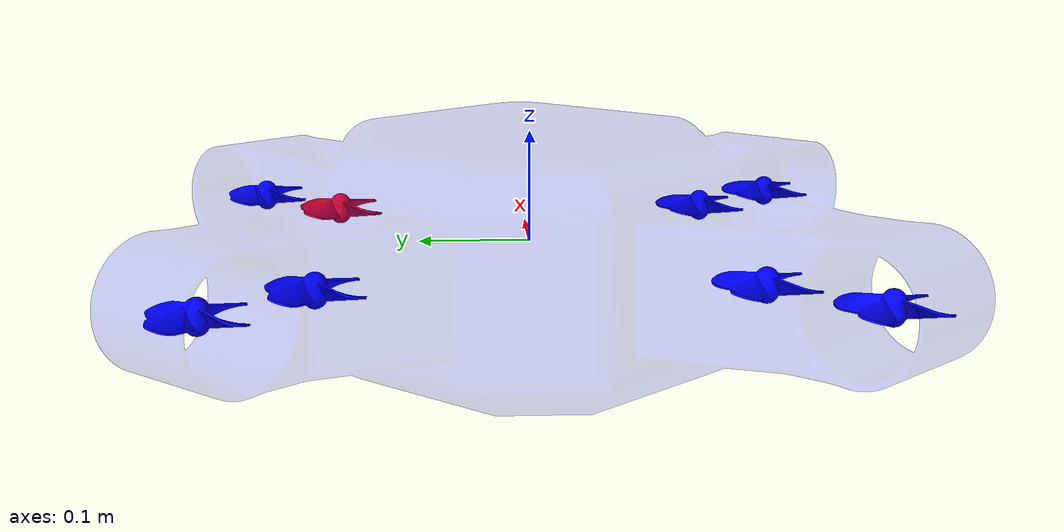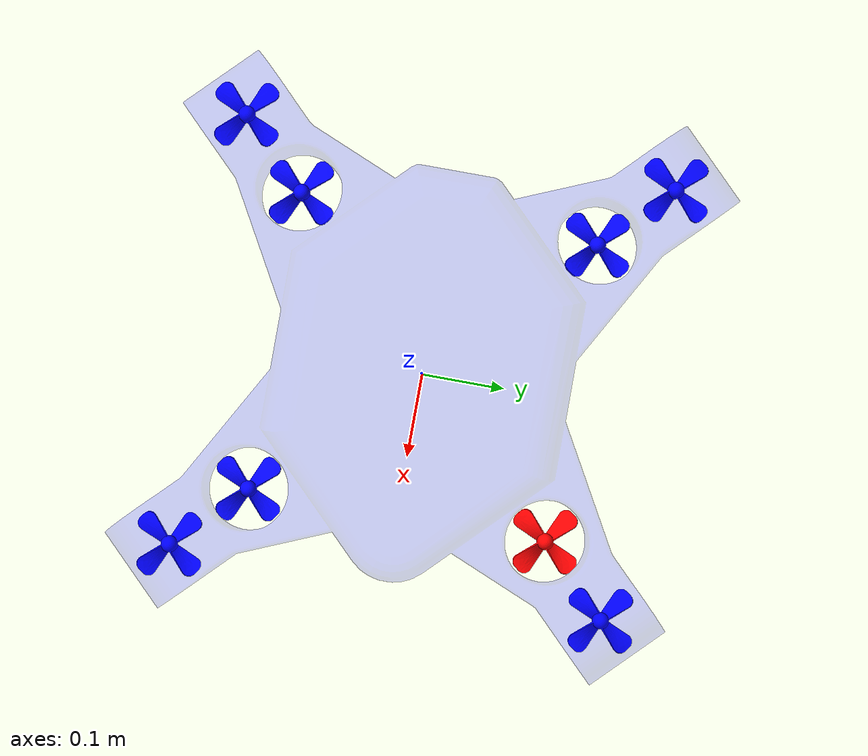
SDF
<sdf version='1.9'>
  <model name='UnderWater_Robot'>

    <plugin
      filename="ignition-gazebo-odometry-publisher-system"
      name="ignition::gazebo::systems::OdometryPublisher">
      <odom_frame>world</odom_frame>
      <robot_base_frame>base_link</robot_base_frame>
      <update_frequency>50</update_frequency>
      <dimensions>3</dimensions>
    </plugin>

    <plugin
  filename="libignition-gazebo-pose-publisher-system.so"
  name="ignition::gazebo::systems::PosePublisher">

  <publish_model_pose>true</publish_model_pose>

  <publish_link_pose>true</publish_link_pose>

  <update_frequency>50</update_frequency>

  <use_pose_vector_msg>true</use_pose_vector_msg>
</plugin>

    <!-- 流体动力学插件：模拟水下机器人的水动力特性 -->
    <plugin
      filename="ignition-gazebo-hydrodynamics-system"
      name="ignition::gazebo::systems::Hydrodynamics">

      <!-- 应用流体动力学的链接名称 -->
      <link_name>base_link</link_name>

      <!-- 流体密度（kg/m³），淡水约1000，海水约1025 -->
      <fluid_density>1000</fluid_density>
      <xDotU>-2.0</xDotU>
      <yDotV>-2.0</yDotV>
      <zDotW>-10.0</zDotW>

      <xU>-10.0</xU>
      <yV>-15.0</yV>
      <zW>-25.0</zW>
      <kP>-3.0</kP>
      <mQ>-5.0</mQ>
      <nR>-5.0</nR>

      <!-- 绝对速度项 一般设置为0-->
      <xUabsU>0</xUabsU>
      <yVabsV>0</yVabsV>
      <zWabsW>0</zWabsW>

    </plugin>

    <link name='base_link'>
      <inertial>
        <pose>-0.0059136 -2.0566e-18 -0.099621 0 0 0</pose>
        <mass>80.677</mass>
        <inertia>
          <ixx>0.31402999999999998</ixx>
          <ixy>0</ixy>
          <ixz>0</ixz>
          <iyy>0.46765000000000001</iyy>
          <iyz>0</iyz>
          <izz>0.60275999999999996</izz>
        </inertia>
      </inertial>
      <collision name='base_link_collision'>
        <pose>0 0 0 0 0 0</pose>
        <geometry>
          <box>
            <size>0.6 0.6 0.2</size>
          </box>
        </geometry>
      </collision>
      <visual name='base_link_visual'>
        <pose>0 0 0 0 0 0</pose>
        <geometry>
          <mesh>
            <scale>1 1 1</scale>
            <uri>
              ./meshes/base_link.STL</uri>
          </mesh>
        </geometry>
        <material>
          <diffuse>0 0 1 0.21</diffuse>
          <ambient>0 0 1 0.21</ambient>
        </material>
      </visual>
    </link>
    <joint name='fan1' type='revolute'>
      <pose relative_to='base_link'>0.17108 0.18031 0 0 0 0</pose>
      <parent>base_link</parent>
      <child>joint1</child>
      <axis>
        <xyz>0 0 1</xyz>
        <limit>
          <lower>-1000000000</lower>
          <upper>1000000000</upper>
          <effort>50</effort>
          <velocity>200</velocity>
        </limit>
        <dynamics>
          <spring_reference>0</spring_reference>
          <spring_stiffness>0</spring_stiffness>
        </dynamics>
      </axis>
    </joint>
    <link name='joint1'>
      <pose relative_to='fan1'>0 0 0 0 0 0</pose>
      <inertial>
        <pose>8.3267e-16 -2.6923e-15 -4.1633e-17 0 0 0</pose>
        <mass>0.013259</mass>
        <inertia>
          <ixx>0.0001</ixx>
          <ixy>0</ixy>
          <ixz>0</ixz>
          <iyy>0.0001</iyy>
          <iyz>0</iyz>
          <izz>0.0001</izz>
        </inertia>
      </inertial>

      <visual name='joint1_visual'>
        <pose>0 0 0 0 0 0</pose>
        <geometry>
          <mesh>
            <scale>1 1 1</scale>
            <uri>
              ./meshes/joint.STL</uri>
          </mesh>
        </geometry>
        <material>
          <diffuse>1 0 0 1</diffuse>
          <ambient>1 0 0 1</ambient>
        </material>
      </visual>

    </link>
    <joint name='fan2' type='revolute'>
      <pose relative_to='base_link'>0.17108 -0.18031 0 0 0 0</pose>
      <parent>base_link</parent>
      <child>joint2</child>
      <axis>
        <xyz>0 0 1</xyz>
        <limit>
          <lower>-1000000000</lower>
          <upper>1000000000</upper>
          <effort>50</effort>
          <velocity>200</velocity>
        </limit>
        <dynamics>
          <spring_reference>0</spring_reference>
          <spring_stiffness>0</spring_stiffness>
        </dynamics>
      </axis>
    </joint>
    <link name='joint2'>
      <pose relative_to='fan2'>0 0 0 0 0 0</pose>
      <inertial>
        <pose>-1.9151e-15 -3.3029e-15 -1.9429e-16 0 0 0</pose>
        <mass>0.013259</mass>
        <inertia>
          <ixx>0.0001</ixx>
          <ixy>0</ixy>
          <ixz>0</ixz>
          <iyy>0.0001</iyy>
          <iyz>0</iyz>
          <izz>0.0001</izz>
        </inertia>
      </inertial>

      <visual name='joint2_visual'>
        <pose>0 0 0 0 0 0</pose>
        <geometry>
          <mesh>
            <scale>1 1 1</scale>
            <uri>
              ./meshes/joint.STL</uri>
          </mesh>
        </geometry>
        <material>
          <diffuse>0 0 1 1</diffuse>
          <ambient>0 0 1 1</ambient>
        </material>
      </visual>

    </link>
    <joint name='fan3' type='revolute'>
      <pose relative_to='base_link'>-0.18955 -0.18031 0 0 0 0</pose>
      <parent>base_link</parent>
      <child>joint3</child>
      <axis>
        <xyz>0 0 1</xyz>
        <limit>
          <lower>-1000000000</lower>
          <upper>1000000000</upper>
          <effort>50</effort>
          <velocity>200</velocity>
        </limit>
        <dynamics>
          <spring_reference>0</spring_reference>
          <spring_stiffness>0</spring_stiffness>
        </dynamics>
      </axis>
    </joint>
    <link name='joint3'>
      <pose relative_to='fan3'>0 0 0 0 0 0</pose>
      <inertial>
        <pose>2.7756e-16 -9.4369e-16 2.7756e-17 0 0 0</pose>
        <mass>0.013259</mass>
        <inertia>
          <ixx>0.0001</ixx>
          <ixy>0</ixy>
          <ixz>0</ixz>
          <iyy>0.0001</iyy>
          <iyz>0</iyz>
          <izz>0.0001</izz>
        </inertia>
      </inertial>

      <visual name='joint3_visual'>
        <pose>0 0 0 0 0 0</pose>
        <geometry>
          <mesh>
            <scale>1 1 1</scale>
            <uri>
              ./meshes/joint.STL</uri>
          </mesh>
        </geometry>
        <material>
          <diffuse>0 0 1 1</diffuse>
          <ambient>0 0 1 1</ambient>
        </material>
      </visual>
    </link>
    <joint name='fan4' type='revolute'>
      <pose relative_to='base_link'>-0.18955 0.18031 0 0 0 0</pose>
      <parent>base_link</parent>
      <child>joint4</child>
      <axis>
        <xyz>0 0 1</xyz>
        <limit>
          <lower>-1000000000</lower>
          <upper>1000000000</upper>
          <effort>50</effort>
          <velocity>200</velocity>
        </limit>
        <dynamics>
          <spring_reference>0</spring_reference>
          <spring_stiffness>0</spring_stiffness>
        </dynamics>
      </axis>
    </joint>
    <link name='joint4'>
      <pose relative_to='fan4'>0 0 0 0 0 0</pose>
      <inertial>
        <pose>-2.4702e-15 1.9429e-16 2.7756e-17 0 0 0</pose>
        <mass>0.013259</mass>
        <inertia>
          <ixx>0.0001</ixx>
          <ixy>0</ixy>
          <ixz>0</ixz>
          <iyy>0.0001</iyy>
          <iyz>0</iyz>
          <izz>0.0001</izz>
        </inertia>
      </inertial>

      <visual name='joint4_visual'>
        <pose>0 0 0 0 0 0</pose>
        <geometry>
          <mesh>
            <scale>1 1 1</scale>
            <uri>
              ./meshes/joint.STL</uri>
          </mesh>
        </geometry>
        <material>
          <diffuse>0 0 1 1</diffuse>
          <ambient>0 0 1 1</ambient>
        </material>
      </visual>
    </link>
    <joint name='fan5' type='revolute'>
      <pose relative_to='base_link'>0.25239 -0.26163 0 0 0 0</pose>
      <parent>base_link</parent>
      <child>joint5</child>
      <axis>
        <xyz>-0.70711 -0.70711 0</xyz>
        <limit>
          <lower>-1000000000</lower>
          <upper>1000000000</upper>
          <effort>50</effort>
          <velocity>200</velocity>
        </limit>
        <dynamics>
          <spring_reference>0</spring_reference>
          <spring_stiffness>0</spring_stiffness>
        </dynamics>
      </axis>
    </joint>
    <link name='joint5'>
      <pose relative_to='fan5'>0 0 0 0 0 0</pose>
      <inertial>
        <pose>1.1627e-08 1.1627e-08 -1.9706e-15 0 0 0</pose>
        <mass>0.013259</mass>
        <inertia>
          <ixx>0.0001</ixx>
          <ixy>0</ixy>
          <ixz>0</ixz>
          <iyy>0.0001</iyy>
          <iyz>0</iyz>
          <izz>0.0001</izz>
        </inertia>
      </inertial>

      <visual name='joint5_visual'>
        <pose>0 0 0 0 0 0</pose>
        <geometry>
          <mesh>
            <scale>1 1 1</scale>
            <uri>
              ./meshes/joint.STL</uri>
          </mesh>
        </geometry>
        <material>
          <diffuse>0 0 1 1</diffuse>
          <ambient>0 0 1 1</ambient>
        </material>
      </visual>
    </link>
    <joint name='fan6' type='revolute'>
      <pose relative_to='base_link'>0.25239 0.26163 0 0 0 0</pose>
      <parent>base_link</parent>
      <child>joint6</child>
      <axis>
        <xyz>-0.70711 0.70711 0</xyz>
        <limit>
          <lower>-1000000000</lower>
          <upper>1000000000</upper>
          <effort>50</effort>
          <velocity>200</velocity>
        </limit>
        <dynamics>
          <spring_reference>0</spring_reference>
          <spring_stiffness>0</spring_stiffness>
        </dynamics>
      </axis>
    </joint>
    <link name='joint6'>
      <pose relative_to='fan6'>0 0 0 0 0 0</pose>
      <inertial>
        <pose>-2.2587e-08 2.2587e-08 -6.245e-16 0 0 0</pose>
        <mass>0.013259</mass>
        <inertia>
          <ixx>0.0001</ixx>
          <ixy>0</ixy>
          <ixz>0</ixz>
          <iyy>0.0001</iyy>
          <iyz>0</iyz>
          <izz>0.0001</izz>
        </inertia>
      </inertial>

      <visual name='joint6_visual'>
        <pose>0 0 0 0 0 0</pose>
        <geometry>
          <mesh>
            <scale>1 1 1</scale>
            <uri>
              ./meshes/joint.STL</uri>
          </mesh>
        </geometry>
        <material>
          <diffuse>0 0 1 1</diffuse>
          <ambient>0 0 1 1</ambient>
        </material>
      </visual>
    </link>
    <joint name='fan7' type='revolute'>
      <pose relative_to='base_link'>-0.27087 -0.26163 0 0 0 0</pose>
      <parent>base_link</parent>
      <child>joint7</child>
      <axis>
        <xyz>0.70711 -0.70711 0</xyz>
        <limit>
          <lower>-1000000000</lower>
          <upper>1000000000</upper>
          <effort>50</effort>
          <velocity>200</velocity>
        </limit>
        <dynamics>
          <spring_reference>0</spring_reference>
          <spring_stiffness>0</spring_stiffness>
        </dynamics>
      </axis>
    </joint>
    <link name='joint7'>
      <pose relative_to='fan7'>0 0 0 0 0 0</pose>
      <inertial>
        <pose>2.2587e-08 -2.2587e-08 1.471e-15 0 0 0</pose>
        <mass>0.013259</mass>
        <inertia>
          <ixx>0.0001</ixx>
          <ixy>0</ixy>
          <ixz>0</ixz>
          <iyy>0.0001</iyy>
          <iyz>0</iyz>
          <izz>0.0001</izz>
        </inertia>
      </inertial>

      <visual name='joint7_visual'>
        <pose>0 0 0 0 0 0</pose>
        <geometry>
          <mesh>
            <scale>1 1 1</scale>
            <uri>
              ./meshes/joint.STL</uri>
          </mesh>
        </geometry>
        <material>
          <diffuse>0 0 1 1</diffuse>
          <ambient>0 0 1 1</ambient>
        </material>
      </visual>
    </link>
    <joint name='fan8' type='revolute'>
      <pose relative_to='base_link'>-0.27087 0.26163 0 0 0 0</pose>
      <parent>base_link</parent>
      <child>joint8</child>
      <axis>
        <xyz>0.70711 0.70711 0</xyz>
        <limit>
          <lower>-1000000000</lower>
          <upper>1000000000</upper>
          <effort>50</effort>
          <velocity>200</velocity>
        </limit>
        <dynamics>
          <spring_reference>0</spring_reference>
          <spring_stiffness>0</spring_stiffness>
        </dynamics>
      </axis>
    </joint>
    <link name='joint8'>
      <pose relative_to='fan8'>0 0 0 0 0 0</pose>
      <inertial>
        <pose>3.6059e-08 3.6059e-08 9.2981e-16 0 0 0</pose>
        <mass>0.013259</mass>
        <inertia>
          <ixx>0.0001</ixx>
          <ixy>0</ixy>
          <ixz>0</ixz>
          <iyy>0.0001</iyy>
          <iyz>0</iyz>
          <izz>0.0001</izz>
        </inertia>
      </inertial>

      <visual name='joint8_visual'>
        <pose>0 0 0 0 0 0</pose>
        <geometry>
          <mesh>
            <scale>1 1 1</scale>
            <uri>
              ./meshes/joint.STL</uri>
          </mesh>
        </geometry>
        <material>
          <diffuse>0 0 1 1</diffuse>
          <ambient>0 0 1 1</ambient>
        </material>
      </visual>
    </link>

    <plugin filename="ignition-gazebo-thruster-system" name="ignition::gazebo::systems::Thruster">
      <namespace>UnderWater_Robot</namespace>
      <joint_name>fan1</joint_name>
      <thrust_coefficient>0.002</thrust_coefficient>
      <fluid_density>1000</fluid_density>
      <propeller_diameter>0.1</propeller_diameter>
      <velocity_control>true</velocity_control>
    </plugin>

    <plugin filename="ignition-gazebo-thruster-system" name="ignition::gazebo::systems::Thruster">
      <namespace>UnderWater_Robot</namespace>
      <joint_name>fan2</joint_name>
      <thrust_coefficient>0.002</thrust_coefficient>
      <fluid_density>1000</fluid_density>
      <propeller_diameter>0.1</propeller_diameter>
      <velocity_control>true</velocity_control>
    </plugin>

    <plugin filename="ignition-gazebo-thruster-system" name="ignition::gazebo::systems::Thruster">
      <namespace>UnderWater_Robot</namespace>
      <joint_name>fan3</joint_name>
      <thrust_coefficient>0.002</thrust_coefficient>
      <fluid_density>1000</fluid_density>
      <propeller_diameter>0.1</propeller_diameter>
      <velocity_control>true</velocity_control>
    </plugin>

    <plugin filename="ignition-gazebo-thruster-system" name="ignition::gazebo::systems::Thruster">
      <namespace>UnderWater_Robot</namespace>
      <joint_name>fan4</joint_name>
      <thrust_coefficient>0.002</thrust_coefficient>
      <fluid_density>1000</fluid_density>
      <propeller_diameter>0.1</propeller_diameter>
      <velocity_control>true</velocity_control>
    </plugin>

<plugin filename="ignition-gazebo-thruster-system" name="ignition::gazebo::systems::Thruster">
      <namespace>UnderWater_Robot</namespace>
      <joint_name>fan5</joint_name>
      <thrust_coefficient>0.002</thrust_coefficient>
      <fluid_density>1000</fluid_density>
      <propeller_diameter>0.1</propeller_diameter>
      <velocity_control>true</velocity_control>
    </plugin>
    <plugin filename="ignition-gazebo-thruster-system" name="ignition::gazebo::systems::Thruster">
      <namespace>UnderWater_Robot</namespace>
      <joint_name>fan6</joint_name>
      <thrust_coefficient>0.002</thrust_coefficient>
      <fluid_density>1000</fluid_density>
      <propeller_diameter>0.1</propeller_diameter>
      <velocity_control>true</velocity_control>
    </plugin>
    <plugin filename="ignition-gazebo-thruster-system" name="ignition::gazebo::systems::Thruster">
      <namespace>UnderWater_Robot</namespace>
      <joint_name>fan7</joint_name>
      <thrust_coefficient>0.002</thrust_coefficient>
      <fluid_density>1000</fluid_density>
      <propeller_diameter>0.1</propeller_diameter>
      <velocity_control>true</velocity_control>
    </plugin>
    <plugin filename="ignition-gazebo-thruster-system" name="ignition::gazebo::systems::Thruster">
      <namespace>UnderWater_Robot</namespace>
      <joint_name>fan8</joint_name>
      <thrust_coefficient>0.002</thrust_coefficient>
      <fluid_density>1000</fluid_density>
      <propeller_diameter>0.1</propeller_diameter>
      <velocity_control>true</velocity_control>
    </plugin>

    <plugin
      filename="ignition-gazebo-joint-state-publisher-system"
      name="ignition::gazebo::systems::JointStatePublisher">
    </plugin>

  </model>
</sdf>
